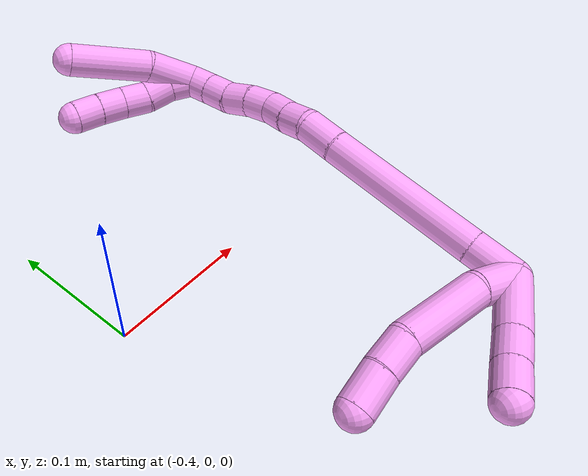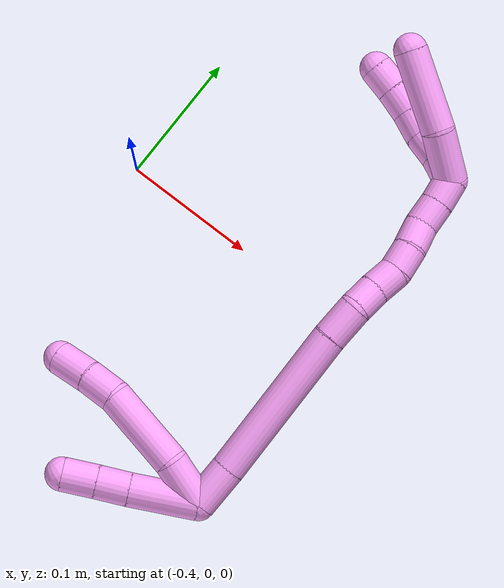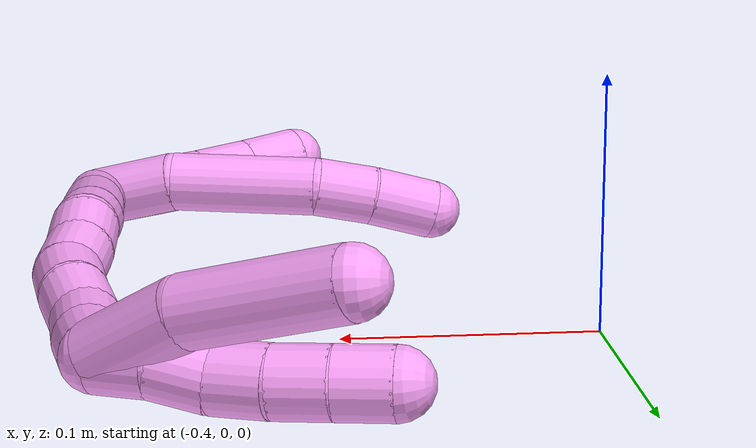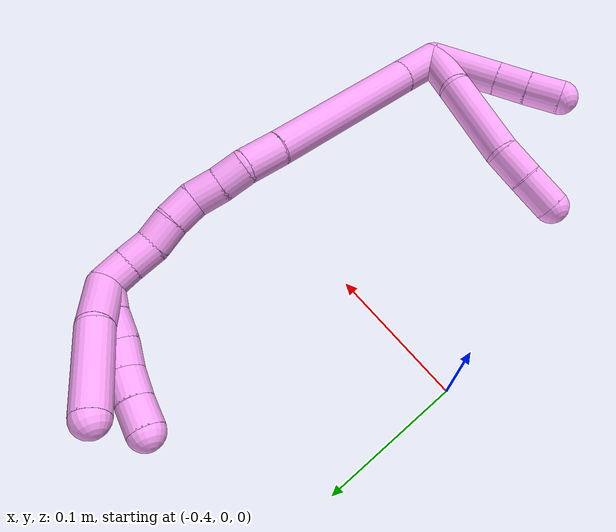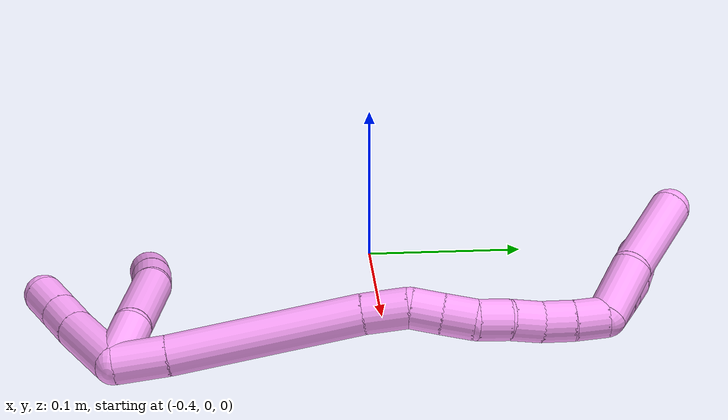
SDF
<sdf version="1.7">
 <world name="default">
  <model name="4">
   <static>0</static>
   <link name="4">
    <collision name="collision-cylinder-e_1_2_8">
     <pose>0.001879 0.001861 0.017879 -0.103736 0.104135 -0.005411</pose>
     <geometry><cylinder><radius>0.0125</radius><length>0.036146</length></cylinder></geometry>
     <surface>
      <friction><ode><mu>1.16</mu><mu2>1.16</mu2><slip1>0</slip1><slip2>0</slip2></ode></friction>
      <contact><ode><kp>1e+06</kp><kd>1</kd><max_vel>0</max_vel><min_depth>0.001</min_depth></ode></contact>
     </surface>
    </collision>
    <visual name="visual-cylinder-e_1_2_8">
     <pose>0.001879 0.001861 0.017879 -0.103736 0.104135 -0.005411</pose>
     <geometry><cylinder><radius>0.0125</radius><length>0.036146</length></cylinder></geometry>
     <material><ambient>1 0.65098 0.996078 1</ambient></material>
    </visual>
    <collision name="collision-cylinder-e_2_8_9">
     <pose>0.002991 -0.001197 0.066302 0.159689 -0.024756 -0.001981</pose>
     <geometry><cylinder><radius>0.0125</radius><length>0.061895</length></cylinder></geometry>
     <surface>
      <friction><ode><mu>1.16</mu><mu2>1.16</mu2><slip1>0</slip1><slip2>0</slip2></ode></friction>
      <contact><ode><kp>1e+06</kp><kd>1</kd><max_vel>0</max_vel><min_depth>0.001</min_depth></ode></contact>
     </surface>
    </collision>
    <visual name="visual-cylinder-e_2_8_9">
     <pose>0.002991 -0.001197 0.066302 0.159689 -0.024756 -0.001981</pose>
     <geometry><cylinder><radius>0.0125</radius><length>0.061895</length></cylinder></geometry>
     <material><ambient>1 0.65098 0.996078 1</ambient></material>
    </visual>
    <collision name="collision-cylinder-e_3_9_10">
     <pose>0.001868 -0.011226 0.108161 0.424142 -0.028738 -0.006188</pose>
     <geometry><cylinder><radius>0.0125</radius><length>0.02484</length></cylinder></geometry>
     <surface>
      <friction><ode><mu>1.16</mu><mu2>1.16</mu2><slip1>0</slip1><slip2>0</slip2></ode></friction>
      <contact><ode><kp>1e+06</kp><kd>1</kd><max_vel>0</max_vel><min_depth>0.001</min_depth></ode></contact>
     </surface>
    </collision>
    <visual name="visual-cylinder-e_3_9_10">
     <pose>0.001868 -0.011226 0.108161 0.424142 -0.028738 -0.006188</pose>
     <geometry><cylinder><radius>0.0125</radius><length>0.02484</length></cylinder></geometry>
     <material><ambient>1 0.65098 0.996078 1</ambient></material>
    </visual>
    <collision name="collision-cylinder-e_4_10_6">
     <pose>0.000699 -0.023052 0.131226 0.519313 -0.059983 -0.015939</pose>
     <geometry><cylinder><radius>0.0125</radius><length>0.027118</length></cylinder></geometry>
     <surface>
      <friction><ode><mu>1.16</mu><mu2>1.16</mu2><slip1>0</slip1><slip2>0</slip2></ode></friction>
      <contact><ode><kp>1e+06</kp><kd>1</kd><max_vel>0</max_vel><min_depth>0.001</min_depth></ode></contact>
     </surface>
    </collision>
    <visual name="visual-cylinder-e_4_10_6">
     <pose>0.000699 -0.023052 0.131226 0.519313 -0.059983 -0.015939</pose>
     <geometry><cylinder><radius>0.0125</radius><length>0.027118</length></cylinder></geometry>
     <material><ambient>1 0.65098 0.996078 1</ambient></material>
    </visual>
    <collision name="collision-cylinder-e_1_2_11">
     <pose>0.010575 -0.014132 0.01817 0.661027 0.430672 0.149809</pose>
     <geometry><cylinder><radius>0.0125</radius><length>0.050663</length></cylinder></geometry>
     <surface>
      <friction><ode><mu>1.16</mu><mu2>1.16</mu2><slip1>0</slip1><slip2>0</slip2></ode></friction>
      <contact><ode><kp>1e+06</kp><kd>1</kd><max_vel>0</max_vel><min_depth>0.001</min_depth></ode></contact>
     </surface>
    </collision>
    <visual name="visual-cylinder-e_1_2_11">
     <pose>0.010575 -0.014132 0.01817 0.661027 0.430672 0.149809</pose>
     <geometry><cylinder><radius>0.0125</radius><length>0.050663</length></cylinder></geometry>
     <material><ambient>1 0.65098 0.996078 1</ambient></material>
    </visual>
    <collision name="collision-cylinder-e_2_11_12">
     <pose>0.026302 -0.03445 0.045296 0.604474 0.442013 0.139875</pose>
     <geometry><cylinder><radius>0.0125</radius><length>0.024086</length></cylinder></geometry>
     <surface>
      <friction><ode><mu>1.16</mu><mu2>1.16</mu2><slip1>0</slip1><slip2>0</slip2></ode></friction>
      <contact><ode><kp>1e+06</kp><kd>1</kd><max_vel>0</max_vel><min_depth>0.001</min_depth></ode></contact>
     </surface>
    </collision>
    <visual name="visual-cylinder-e_2_11_12">
     <pose>0.026302 -0.03445 0.045296 0.604474 0.442013 0.139875</pose>
     <geometry><cylinder><radius>0.0125</radius><length>0.024086</length></cylinder></geometry>
     <material><ambient>1 0.65098 0.996078 1</ambient></material>
    </visual>
    <collision name="collision-cylinder-e_3_12_5">
     <pose>0.037151 -0.047111 0.063474 0.612141 0.468159 0.150417</pose>
     <geometry><cylinder><radius>0.0125</radius><length>0.025251</length></cylinder></geometry>
     <surface>
      <friction><ode><mu>1.16</mu><mu2>1.16</mu2><slip1>0</slip1><slip2>0</slip2></ode></friction>
      <contact><ode><kp>1e+06</kp><kd>1</kd><max_vel>0</max_vel><min_depth>0.001</min_depth></ode></contact>
     </surface>
    </collision>
    <visual name="visual-cylinder-e_3_12_5">
     <pose>0.037151 -0.047111 0.063474 0.612141 0.468159 0.150417</pose>
     <geometry><cylinder><radius>0.0125</radius><length>0.025251</length></cylinder></geometry>
     <material><ambient>1 0.65098 0.996078 1</ambient></material>
    </visual>
    <collision name="collision-cylinder-e_1_2_13">
     <pose>-0.008412 0.013391 0.004447 -1.25016 -0.537585 0.392432</pose>
     <geometry><cylinder><radius>0.0125</radius><length>0.032855</length></cylinder></geometry>
     <surface>
      <friction><ode><mu>1.16</mu><mu2>1.16</mu2><slip1>0</slip1><slip2>0</slip2></ode></friction>
      <contact><ode><kp>1e+06</kp><kd>1</kd><max_vel>0</max_vel><min_depth>0.001</min_depth></ode></contact>
     </surface>
    </collision>
    <visual name="visual-cylinder-e_1_2_13">
     <pose>-0.008412 0.013391 0.004447 -1.25016 -0.537585 0.392432</pose>
     <geometry><cylinder><radius>0.0125</radius><length>0.032855</length></cylinder></geometry>
     <material><ambient>1 0.65098 0.996078 1</ambient></material>
    </visual>
    <collision name="collision-cylinder-e_2_13_14">
     <pose>-0.044704 0.075827 0.027022 -1.21675 -0.489857 0.344723</pose>
     <geometry><cylinder><radius>0.0125</radius><length>0.118513</length></cylinder></geometry>
     <surface>
      <friction><ode><mu>1.16</mu><mu2>1.16</mu2><slip1>0</slip1><slip2>0</slip2></ode></friction>
      <contact><ode><kp>1e+06</kp><kd>1</kd><max_vel>0</max_vel><min_depth>0.001</min_depth></ode></contact>
     </surface>
    </collision>
    <visual name="visual-cylinder-e_2_13_14">
     <pose>-0.044704 0.075827 0.027022 -1.21675 -0.489857 0.344723</pose>
     <geometry><cylinder><radius>0.0125</radius><length>0.118513</length></cylinder></geometry>
     <material><ambient>1 0.65098 0.996078 1</ambient></material>
    </visual>
    <collision name="collision-cylinder-e_3_14_15">
     <pose>-0.079827 0.136158 0.048553 -1.27794 -0.550986 0.414015</pose>
     <geometry><cylinder><radius>0.0125</radius><length>0.027671</length></cylinder></geometry>
     <surface>
      <friction><ode><mu>1.16</mu><mu2>1.16</mu2><slip1>0</slip1><slip2>0</slip2></ode></friction>
      <contact><ode><kp>1e+06</kp><kd>1</kd><max_vel>0</max_vel><min_depth>0.001</min_depth></ode></contact>
     </surface>
    </collision>
    <visual name="visual-cylinder-e_3_14_15">
     <pose>-0.079827 0.136158 0.048553 -1.27794 -0.550986 0.414015</pose>
     <geometry><cylinder><radius>0.0125</radius><length>0.027671</length></cylinder></geometry>
     <material><ambient>1 0.65098 0.996078 1</ambient></material>
    </visual>
    <collision name="collision-cylinder-e_4_15_16">
     <pose>-0.094864 0.153533 0.053661 -1.29785 -0.889189 0.693517</pose>
     <geometry><cylinder><radius>0.0125</radius><length>0.020071</length></cylinder></geometry>
     <surface>
      <friction><ode><mu>1.16</mu><mu2>1.16</mu2><slip1>0</slip1><slip2>0</slip2></ode></friction>
      <contact><ode><kp>1e+06</kp><kd>1</kd><max_vel>0</max_vel><min_depth>0.001</min_depth></ode></contact>
     </surface>
    </collision>
    <visual name="visual-cylinder-e_4_15_16">
     <pose>-0.094864 0.153533 0.053661 -1.29785 -0.889189 0.693517</pose>
     <geometry><cylinder><radius>0.0125</radius><length>0.020071</length></cylinder></geometry>
     <material><ambient>1 0.65098 0.996078 1</ambient></material>
    </visual>
    <collision name="collision-cylinder-e_5_16_17">
     <pose>-0.110353 0.16647 0.056355 -1.42725 -0.838436 0.736501</pose>
     <geometry><cylinder><radius>0.0125</radius><length>0.020697</length></cylinder></geometry>
     <surface>
      <friction><ode><mu>1.16</mu><mu2>1.16</mu2><slip1>0</slip1><slip2>0</slip2></ode></friction>
      <contact><ode><kp>1e+06</kp><kd>1</kd><max_vel>0</max_vel><min_depth>0.001</min_depth></ode></contact>
     </surface>
    </collision>
    <visual name="visual-cylinder-e_5_16_17">
     <pose>-0.110353 0.16647 0.056355 -1.42725 -0.838436 0.736501</pose>
     <geometry><cylinder><radius>0.0125</radius><length>0.020697</length></cylinder></geometry>
     <material><ambient>1 0.65098 0.996078 1</ambient></material>
    </visual>
    <collision name="collision-cylinder-e_6_17_18">
     <pose>-0.124845 0.179633 0.061236 -1.01861 -0.741781 0.427704</pose>
     <geometry><cylinder><radius>0.0125</radius><length>0.020121</length></cylinder></geometry>
     <surface>
      <friction><ode><mu>1.16</mu><mu2>1.16</mu2><slip1>0</slip1><slip2>0</slip2></ode></friction>
      <contact><ode><kp>1e+06</kp><kd>1</kd><max_vel>0</max_vel><min_depth>0.001</min_depth></ode></contact>
     </surface>
    </collision>
    <visual name="visual-cylinder-e_6_17_18">
     <pose>-0.124845 0.179633 0.061236 -1.01861 -0.741781 0.427704</pose>
     <geometry><cylinder><radius>0.0125</radius><length>0.020121</length></cylinder></geometry>
     <material><ambient>1 0.65098 0.996078 1</ambient></material>
    </visual>
    <collision name="collision-cylinder-e_7_18_19">
     <pose>-0.139033 0.190908 0.069705 -0.825352 -0.830684 0.381458</pose>
     <geometry><cylinder><radius>0.0125</radius><length>0.020019</length></cylinder></geometry>
     <surface>
      <friction><ode><mu>1.16</mu><mu2>1.16</mu2><slip1>0</slip1><slip2>0</slip2></ode></friction>
      <contact><ode><kp>1e+06</kp><kd>1</kd><max_vel>0</max_vel><min_depth>0.001</min_depth></ode></contact>
     </surface>
    </collision>
    <visual name="visual-cylinder-e_7_18_19">
     <pose>-0.139033 0.190908 0.069705 -0.825352 -0.830684 0.381458</pose>
     <geometry><cylinder><radius>0.0125</radius><length>0.020019</length></cylinder></geometry>
     <material><ambient>1 0.65098 0.996078 1</ambient></material>
    </visual>
    <collision name="collision-cylinder-e_8_19_20">
     <pose>-0.152827 0.202768 0.077696 -1.11145 -0.693887 0.44175</pose>
     <geometry><cylinder><radius>0.0125</radius><length>0.020026</length></cylinder></geometry>
     <surface>
      <friction><ode><mu>1.16</mu><mu2>1.16</mu2><slip1>0</slip1><slip2>0</slip2></ode></friction>
      <contact><ode><kp>1e+06</kp><kd>1</kd><max_vel>0</max_vel><min_depth>0.001</min_depth></ode></contact>
     </surface>
    </collision>
    <visual name="visual-cylinder-e_8_19_20">
     <pose>-0.152827 0.202768 0.077696 -1.11145 -0.693887 0.44175</pose>
     <geometry><cylinder><radius>0.0125</radius><length>0.020026</length></cylinder></geometry>
     <material><ambient>1 0.65098 0.996078 1</ambient></material>
    </visual>
    <collision name="collision-cylinder-e_9_20_1">
     <pose>-0.165139 0.216632 0.085214 -1.03827 -0.631125 0.368862</pose>
     <geometry><cylinder><radius>0.0125</radius><length>0.020027</length></cylinder></geometry>
     <surface>
      <friction><ode><mu>1.16</mu><mu2>1.16</mu2><slip1>0</slip1><slip2>0</slip2></ode></friction>
      <contact><ode><kp>1e+06</kp><kd>1</kd><max_vel>0</max_vel><min_depth>0.001</min_depth></ode></contact>
     </surface>
    </collision>
    <visual name="visual-cylinder-e_9_20_1">
     <pose>-0.165139 0.216632 0.085214 -1.03827 -0.631125 0.368862</pose>
     <geometry><cylinder><radius>0.0125</radius><length>0.020027</length></cylinder></geometry>
     <material><ambient>1 0.65098 0.996078 1</ambient></material>
    </visual>
    <collision name="collision-cylinder-e_1_1_21">
     <pose>-0.168086 0.232583 0.106413 -0.483941 0.152135 -0.037616</pose>
     <geometry><cylinder><radius>0.0125</radius><length>0.039076</length></cylinder></geometry>
     <surface>
      <friction><ode><mu>1.16</mu><mu2>1.16</mu2><slip1>0</slip1><slip2>0</slip2></ode></friction>
      <contact><ode><kp>1e+06</kp><kd>1</kd><max_vel>0</max_vel><min_depth>0.001</min_depth></ode></contact>
     </surface>
    </collision>
    <visual name="visual-cylinder-e_1_1_21">
     <pose>-0.168086 0.232583 0.106413 -0.483941 0.152135 -0.037616</pose>
     <geometry><cylinder><radius>0.0125</radius><length>0.039076</length></cylinder></geometry>
     <material><ambient>1 0.65098 0.996078 1</ambient></material>
    </visual>
    <collision name="collision-cylinder-e_2_21_4">
     <pose>-0.165647 0.250573 0.152603 -0.300142 -0.017137 0.002591</pose>
     <geometry><cylinder><radius>0.0125</radius><length>0.060924</length></cylinder></geometry>
     <surface>
      <friction><ode><mu>1.16</mu><mu2>1.16</mu2><slip1>0</slip1><slip2>0</slip2></ode></friction>
      <contact><ode><kp>1e+06</kp><kd>1</kd><max_vel>0</max_vel><min_depth>0.001</min_depth></ode></contact>
     </surface>
    </collision>
    <visual name="visual-cylinder-e_2_21_4">
     <pose>-0.165647 0.250573 0.152603 -0.300142 -0.017137 0.002591</pose>
     <geometry><cylinder><radius>0.0125</radius><length>0.060924</length></cylinder></geometry>
     <material><ambient>1 0.65098 0.996078 1</ambient></material>
    </visual>
    <collision name="collision-cylinder-e_1_1_22">
     <pose>-0.17261 0.224047 0.099185 -0.045513 -0.156956 0.00358</pose>
     <geometry><cylinder><radius>0.0125</radius><length>0.02</length></cylinder></geometry>
     <surface>
      <friction><ode><mu>1.16</mu><mu2>1.16</mu2><slip1>0</slip1><slip2>0</slip2></ode></friction>
      <contact><ode><kp>1e+06</kp><kd>1</kd><max_vel>0</max_vel><min_depth>0.001</min_depth></ode></contact>
     </surface>
    </collision>
    <visual name="visual-cylinder-e_1_1_22">
     <pose>-0.17261 0.224047 0.099185 -0.045513 -0.156956 0.00358</pose>
     <geometry><cylinder><radius>0.0125</radius><length>0.02</length></cylinder></geometry>
     <material><ambient>1 0.65098 0.996078 1</ambient></material>
    </visual>
    <collision name="collision-cylinder-e_2_22_23">
     <pose>-0.17652 0.222698 0.118605 0.186027 -0.236861 -0.022198</pose>
     <geometry><cylinder><radius>0.0125</radius><length>0.02</length></cylinder></geometry>
     <surface>
      <friction><ode><mu>1.16</mu><mu2>1.16</mu2><slip1>0</slip1><slip2>0</slip2></ode></friction>
      <contact><ode><kp>1e+06</kp><kd>1</kd><max_vel>0</max_vel><min_depth>0.001</min_depth></ode></contact>
     </surface>
    </collision>
    <visual name="visual-cylinder-e_2_22_23">
     <pose>-0.17652 0.222698 0.118605 0.186027 -0.236861 -0.022198</pose>
     <geometry><cylinder><radius>0.0125</radius><length>0.02</length></cylinder></geometry>
     <material><ambient>1 0.65098 0.996078 1</ambient></material>
    </visual>
    <collision name="collision-cylinder-e_3_23_24">
     <pose>-0.180247 0.221299 0.138054 -0.040289 -0.138449 0.002794</pose>
     <geometry><cylinder><radius>0.0125</radius><length>0.02</length></cylinder></geometry>
     <surface>
      <friction><ode><mu>1.16</mu><mu2>1.16</mu2><slip1>0</slip1><slip2>0</slip2></ode></friction>
      <contact><ode><kp>1e+06</kp><kd>1</kd><max_vel>0</max_vel><min_depth>0.001</min_depth></ode></contact>
     </surface>
    </collision>
    <visual name="visual-cylinder-e_3_23_24">
     <pose>-0.180247 0.221299 0.138054 -0.040289 -0.138449 0.002794</pose>
     <geometry><cylinder><radius>0.0125</radius><length>0.02</length></cylinder></geometry>
     <material><ambient>1 0.65098 0.996078 1</ambient></material>
    </visual>
    <collision name="collision-cylinder-e_4_24_25">
     <pose>-0.182084 0.221429 0.157937 0.026904 -0.045702 -0.000615</pose>
     <geometry><cylinder><radius>0.0125</radius><length>0.02</length></cylinder></geometry>
     <surface>
      <friction><ode><mu>1.16</mu><mu2>1.16</mu2><slip1>0</slip1><slip2>0</slip2></ode></friction>
      <contact><ode><kp>1e+06</kp><kd>1</kd><max_vel>0</max_vel><min_depth>0.001</min_depth></ode></contact>
     </surface>
    </collision>
    <visual name="visual-cylinder-e_4_24_25">
     <pose>-0.182084 0.221429 0.157937 0.026904 -0.045702 -0.000615</pose>
     <geometry><cylinder><radius>0.0125</radius><length>0.02</length></cylinder></geometry>
     <material><ambient>1 0.65098 0.996078 1</ambient></material>
    </visual>
    <collision name="collision-cylinder-e_5_25_3">
     <pose>-0.18275 0.220249 0.177879 0.09132 -0.020941 -0.000957</pose>
     <geometry><cylinder><radius>0.0125</radius><length>0.02</length></cylinder></geometry>
     <surface>
      <friction><ode><mu>1.16</mu><mu2>1.16</mu2><slip1>0</slip1><slip2>0</slip2></ode></friction>
      <contact><ode><kp>1e+06</kp><kd>1</kd><max_vel>0</max_vel><min_depth>0.001</min_depth></ode></contact>
     </surface>
    </collision>
    <visual name="visual-cylinder-e_5_25_3">
     <pose>-0.18275 0.220249 0.177879 0.09132 -0.020941 -0.000957</pose>
     <geometry><cylinder><radius>0.0125</radius><length>0.02</length></cylinder></geometry>
     <material><ambient>1 0.65098 0.996078 1</ambient></material>
    </visual>
    <collision name="collision-sphere-3">
     <pose>-0.182959 0.219337 0.187835 0 -0 0</pose>
     <geometry><sphere><radius>0.0125</radius></sphere></geometry>
     <surface>
      <friction><ode><mu>1.16</mu><mu2>1.16</mu2><slip1>0</slip1><slip2>0</slip2></ode></friction>
      <contact><ode><kp>1e+06</kp><kd>1</kd><max_vel>0</max_vel><min_depth>0.001</min_depth></ode></contact>
     </surface>
    </collision>
    <visual name="visual-sphere-3">
     <pose>-0.182959 0.219337 0.187835 0 -0 0</pose>
     <geometry><sphere><radius>0.0125</radius></sphere></geometry>
     <material><ambient>1 0.65098 0.996078 1</ambient></material>
    </visual>
    <collision name="collision-sphere-25">
     <pose>-0.18254 0.221161 0.167922 0 -0 0</pose>
     <geometry><sphere><radius>0.0125</radius></sphere></geometry>
     <surface>
      <friction><ode><mu>1.16</mu><mu2>1.16</mu2><slip1>0</slip1><slip2>0</slip2></ode></friction>
      <contact><ode><kp>1e+06</kp><kd>1</kd><max_vel>0</max_vel><min_depth>0.001</min_depth></ode></contact>
     </surface>
    </collision>
    <visual name="visual-sphere-25">
     <pose>-0.18254 0.221161 0.167922 0 -0 0</pose>
     <geometry><sphere><radius>0.0125</radius></sphere></geometry>
     <material><ambient>1 0.65098 0.996078 1</ambient></material>
    </visual>
    <collision name="collision-sphere-24">
     <pose>-0.181627 0.221698 0.147951 0 -0 0</pose>
     <geometry><sphere><radius>0.0125</radius></sphere></geometry>
     <surface>
      <friction><ode><mu>1.16</mu><mu2>1.16</mu2><slip1>0</slip1><slip2>0</slip2></ode></friction>
      <contact><ode><kp>1e+06</kp><kd>1</kd><max_vel>0</max_vel><min_depth>0.001</min_depth></ode></contact>
     </surface>
    </collision>
    <visual name="visual-sphere-24">
     <pose>-0.181627 0.221698 0.147951 0 -0 0</pose>
     <geometry><sphere><radius>0.0125</radius></sphere></geometry>
     <material><ambient>1 0.65098 0.996078 1</ambient></material>
    </visual>
    <collision name="collision-sphere-23">
     <pose>-0.178867 0.2209 0.128158 0 -0 0</pose>
     <geometry><sphere><radius>0.0125</radius></sphere></geometry>
     <surface>
      <friction><ode><mu>1.16</mu><mu2>1.16</mu2><slip1>0</slip1><slip2>0</slip2></ode></friction>
      <contact><ode><kp>1e+06</kp><kd>1</kd><max_vel>0</max_vel><min_depth>0.001</min_depth></ode></contact>
     </surface>
    </collision>
    <visual name="visual-sphere-23">
     <pose>-0.178867 0.2209 0.128158 0 -0 0</pose>
     <geometry><sphere><radius>0.0125</radius></sphere></geometry>
     <material><ambient>1 0.65098 0.996078 1</ambient></material>
    </visual>
    <collision name="collision-sphere-22">
     <pose>-0.174174 0.224496 0.109052 0 -0 0</pose>
     <geometry><sphere><radius>0.0125</radius></sphere></geometry>
     <surface>
      <friction><ode><mu>1.16</mu><mu2>1.16</mu2><slip1>0</slip1><slip2>0</slip2></ode></friction>
      <contact><ode><kp>1e+06</kp><kd>1</kd><max_vel>0</max_vel><min_depth>0.001</min_depth></ode></contact>
     </surface>
    </collision>
    <visual name="visual-sphere-22">
     <pose>-0.174174 0.224496 0.109052 0 -0 0</pose>
     <geometry><sphere><radius>0.0125</radius></sphere></geometry>
     <material><ambient>1 0.65098 0.996078 1</ambient></material>
    </visual>
    <collision name="collision-sphere-4">
     <pose>-0.166169 0.259578 0.181699 0 -0 0</pose>
     <geometry><sphere><radius>0.0125</radius></sphere></geometry>
     <surface>
      <friction><ode><mu>1.16</mu><mu2>1.16</mu2><slip1>0</slip1><slip2>0</slip2></ode></friction>
      <contact><ode><kp>1e+06</kp><kd>1</kd><max_vel>0</max_vel><min_depth>0.001</min_depth></ode></contact>
     </surface>
    </collision>
    <visual name="visual-sphere-4">
     <pose>-0.166169 0.259578 0.181699 0 -0 0</pose>
     <geometry><sphere><radius>0.0125</radius></sphere></geometry>
     <material><ambient>1 0.65098 0.996078 1</ambient></material>
    </visual>
    <collision name="collision-sphere-21">
     <pose>-0.165125 0.241568 0.123507 0 -0 0</pose>
     <geometry><sphere><radius>0.0125</radius></sphere></geometry>
     <surface>
      <friction><ode><mu>1.16</mu><mu2>1.16</mu2><slip1>0</slip1><slip2>0</slip2></ode></friction>
      <contact><ode><kp>1e+06</kp><kd>1</kd><max_vel>0</max_vel><min_depth>0.001</min_depth></ode></contact>
     </surface>
    </collision>
    <visual name="visual-sphere-21">
     <pose>-0.165125 0.241568 0.123507 0 -0 0</pose>
     <geometry><sphere><radius>0.0125</radius></sphere></geometry>
     <material><ambient>1 0.65098 0.996078 1</ambient></material>
    </visual>
    <collision name="collision-sphere-1">
     <pose>-0.171047 0.223597 0.089318 0 -0 0</pose>
     <geometry><sphere><radius>0.0125</radius></sphere></geometry>
     <surface>
      <friction><ode><mu>1.16</mu><mu2>1.16</mu2><slip1>0</slip1><slip2>0</slip2></ode></friction>
      <contact><ode><kp>1e+06</kp><kd>1</kd><max_vel>0</max_vel><min_depth>0.001</min_depth></ode></contact>
     </surface>
    </collision>
    <visual name="visual-sphere-1">
     <pose>-0.171047 0.223597 0.089318 0 -0 0</pose>
     <geometry><sphere><radius>0.0125</radius></sphere></geometry>
     <material><ambient>1 0.65098 0.996078 1</ambient></material>
    </visual>
    <collision name="collision-sphere-11">
     <pose>0.021151 -0.028263 0.036339 0 -0 0</pose>
     <geometry><sphere><radius>0.0125</radius></sphere></geometry>
     <surface>
      <friction><ode><mu>1.16</mu><mu2>1.16</mu2><slip1>0</slip1><slip2>0</slip2></ode></friction>
      <contact><ode><kp>1e+06</kp><kd>1</kd><max_vel>0</max_vel><min_depth>0.001</min_depth></ode></contact>
     </surface>
    </collision>
    <visual name="visual-sphere-11">
     <pose>0.021151 -0.028263 0.036339 0 -0 0</pose>
     <geometry><sphere><radius>0.0125</radius></sphere></geometry>
     <material><ambient>1 0.65098 0.996078 1</ambient></material>
    </visual>
    <collision name="collision-sphere-6">
     <pose>-0.000114 -0.029769 0.142977 0 -0 0</pose>
     <geometry><sphere><radius>0.0125</radius></sphere></geometry>
     <surface>
      <friction><ode><mu>1.16</mu><mu2>1.16</mu2><slip1>0</slip1><slip2>0</slip2></ode></friction>
      <contact><ode><kp>1e+06</kp><kd>1</kd><max_vel>0</max_vel><min_depth>0.001</min_depth></ode></contact>
     </surface>
    </collision>
    <visual name="visual-sphere-6">
     <pose>-0.000114 -0.029769 0.142977 0 -0 0</pose>
     <geometry><sphere><radius>0.0125</radius></sphere></geometry>
     <material><ambient>1 0.65098 0.996078 1</ambient></material>
    </visual>
    <collision name="collision-sphere-10">
     <pose>0.001511 -0.016335 0.119476 0 -0 0</pose>
     <geometry><sphere><radius>0.0125</radius></sphere></geometry>
     <surface>
      <friction><ode><mu>1.16</mu><mu2>1.16</mu2><slip1>0</slip1><slip2>0</slip2></ode></friction>
      <contact><ode><kp>1e+06</kp><kd>1</kd><max_vel>0</max_vel><min_depth>0.001</min_depth></ode></contact>
     </surface>
    </collision>
    <visual name="visual-sphere-10">
     <pose>0.001511 -0.016335 0.119476 0 -0 0</pose>
     <geometry><sphere><radius>0.0125</radius></sphere></geometry>
     <material><ambient>1 0.65098 0.996078 1</ambient></material>
    </visual>
    <collision name="collision-sphere-9">
     <pose>0.002225 -0.006116 0.096846 0 -0 0</pose>
     <geometry><sphere><radius>0.0125</radius></sphere></geometry>
     <surface>
      <friction><ode><mu>1.16</mu><mu2>1.16</mu2><slip1>0</slip1><slip2>0</slip2></ode></friction>
      <contact><ode><kp>1e+06</kp><kd>1</kd><max_vel>0</max_vel><min_depth>0.001</min_depth></ode></contact>
     </surface>
    </collision>
    <visual name="visual-sphere-9">
     <pose>0.002225 -0.006116 0.096846 0 -0 0</pose>
     <geometry><sphere><radius>0.0125</radius></sphere></geometry>
     <material><ambient>1 0.65098 0.996078 1</ambient></material>
    </visual>
    <collision name="collision-sphere-2">
     <geometry><sphere><radius>0.0125</radius></sphere></geometry>
     <surface>
      <friction><ode><mu>1.16</mu><mu2>1.16</mu2><slip1>0</slip1><slip2>0</slip2></ode></friction>
      <contact><ode><kp>1e+06</kp><kd>1</kd><max_vel>0</max_vel><min_depth>0.001</min_depth></ode></contact>
     </surface>
    </collision>
    <visual name="visual-sphere-2">
     <geometry><sphere><radius>0.0125</radius></sphere></geometry>
     <material><ambient>1 0.65098 0.996078 1</ambient></material>
    </visual>
    <collision name="collision-sphere-19">
     <pose>-0.146424 0.195868 0.074284 0 -0 0</pose>
     <geometry><sphere><radius>0.0125</radius></sphere></geometry>
     <surface>
      <friction><ode><mu>1.16</mu><mu2>1.16</mu2><slip1>0</slip1><slip2>0</slip2></ode></friction>
      <contact><ode><kp>1e+06</kp><kd>1</kd><max_vel>0</max_vel><min_depth>0.001</min_depth></ode></contact>
     </surface>
    </collision>
    <visual name="visual-sphere-19">
     <pose>-0.146424 0.195868 0.074284 0 -0 0</pose>
     <geometry><sphere><radius>0.0125</radius></sphere></geometry>
     <material><ambient>1 0.65098 0.996078 1</ambient></material>
    </visual>
    <collision name="collision-sphere-8">
     <pose>0.003757 0.003723 0.035757 0 -0 0</pose>
     <geometry><sphere><radius>0.0125</radius></sphere></geometry>
     <surface>
      <friction><ode><mu>1.16</mu><mu2>1.16</mu2><slip1>0</slip1><slip2>0</slip2></ode></friction>
      <contact><ode><kp>1e+06</kp><kd>1</kd><max_vel>0</max_vel><min_depth>0.001</min_depth></ode></contact>
     </surface>
    </collision>
    <visual name="visual-sphere-8">
     <pose>0.003757 0.003723 0.035757 0 -0 0</pose>
     <geometry><sphere><radius>0.0125</radius></sphere></geometry>
     <material><ambient>1 0.65098 0.996078 1</ambient></material>
    </visual>
    <collision name="collision-sphere-12">
     <pose>0.031454 -0.040637 0.054253 0 -0 0</pose>
     <geometry><sphere><radius>0.0125</radius></sphere></geometry>
     <surface>
      <friction><ode><mu>1.16</mu><mu2>1.16</mu2><slip1>0</slip1><slip2>0</slip2></ode></friction>
      <contact><ode><kp>1e+06</kp><kd>1</kd><max_vel>0</max_vel><min_depth>0.001</min_depth></ode></contact>
     </surface>
    </collision>
    <visual name="visual-sphere-12">
     <pose>0.031454 -0.040637 0.054253 0 -0 0</pose>
     <geometry><sphere><radius>0.0125</radius></sphere></geometry>
     <material><ambient>1 0.65098 0.996078 1</ambient></material>
    </visual>
    <collision name="collision-sphere-5">
     <pose>0.042848 -0.053585 0.072695 0 -0 0</pose>
     <geometry><sphere><radius>0.0125</radius></sphere></geometry>
     <surface>
      <friction><ode><mu>1.16</mu><mu2>1.16</mu2><slip1>0</slip1><slip2>0</slip2></ode></friction>
      <contact><ode><kp>1e+06</kp><kd>1</kd><max_vel>0</max_vel><min_depth>0.001</min_depth></ode></contact>
     </surface>
    </collision>
    <visual name="visual-sphere-5">
     <pose>0.042848 -0.053585 0.072695 0 -0 0</pose>
     <geometry><sphere><radius>0.0125</radius></sphere></geometry>
     <material><ambient>1 0.65098 0.996078 1</ambient></material>
    </visual>
    <collision name="collision-sphere-13">
     <pose>-0.016824 0.026782 0.008894 0 -0 0</pose>
     <geometry><sphere><radius>0.0125</radius></sphere></geometry>
     <surface>
      <friction><ode><mu>1.16</mu><mu2>1.16</mu2><slip1>0</slip1><slip2>0</slip2></ode></friction>
      <contact><ode><kp>1e+06</kp><kd>1</kd><max_vel>0</max_vel><min_depth>0.001</min_depth></ode></contact>
     </surface>
    </collision>
    <visual name="visual-sphere-13">
     <pose>-0.016824 0.026782 0.008894 0 -0 0</pose>
     <geometry><sphere><radius>0.0125</radius></sphere></geometry>
     <material><ambient>1 0.65098 0.996078 1</ambient></material>
    </visual>
    <collision name="collision-sphere-14">
     <pose>-0.072584 0.124872 0.04515 0 -0 0</pose>
     <geometry><sphere><radius>0.0125</radius></sphere></geometry>
     <surface>
      <friction><ode><mu>1.16</mu><mu2>1.16</mu2><slip1>0</slip1><slip2>0</slip2></ode></friction>
      <contact><ode><kp>1e+06</kp><kd>1</kd><max_vel>0</max_vel><min_depth>0.001</min_depth></ode></contact>
     </surface>
    </collision>
    <visual name="visual-sphere-14">
     <pose>-0.072584 0.124872 0.04515 0 -0 0</pose>
     <geometry><sphere><radius>0.0125</radius></sphere></geometry>
     <material><ambient>1 0.65098 0.996078 1</ambient></material>
    </visual>
    <collision name="collision-sphere-15">
     <pose>-0.087071 0.147444 0.051956 0 -0 0</pose>
     <geometry><sphere><radius>0.0125</radius></sphere></geometry>
     <surface>
      <friction><ode><mu>1.16</mu><mu2>1.16</mu2><slip1>0</slip1><slip2>0</slip2></ode></friction>
      <contact><ode><kp>1e+06</kp><kd>1</kd><max_vel>0</max_vel><min_depth>0.001</min_depth></ode></contact>
     </surface>
    </collision>
    <visual name="visual-sphere-15">
     <pose>-0.087071 0.147444 0.051956 0 -0 0</pose>
     <geometry><sphere><radius>0.0125</radius></sphere></geometry>
     <material><ambient>1 0.65098 0.996078 1</ambient></material>
    </visual>
    <collision name="collision-sphere-16">
     <pose>-0.102657 0.159622 0.055365 0 -0 0</pose>
     <geometry><sphere><radius>0.0125</radius></sphere></geometry>
     <surface>
      <friction><ode><mu>1.16</mu><mu2>1.16</mu2><slip1>0</slip1><slip2>0</slip2></ode></friction>
      <contact><ode><kp>1e+06</kp><kd>1</kd><max_vel>0</max_vel><min_depth>0.001</min_depth></ode></contact>
     </surface>
    </collision>
    <visual name="visual-sphere-16">
     <pose>-0.102657 0.159622 0.055365 0 -0 0</pose>
     <geometry><sphere><radius>0.0125</radius></sphere></geometry>
     <material><ambient>1 0.65098 0.996078 1</ambient></material>
    </visual>
    <collision name="collision-sphere-17">
     <pose>-0.118048 0.173318 0.057345 0 -0 0</pose>
     <geometry><sphere><radius>0.0125</radius></sphere></geometry>
     <surface>
      <friction><ode><mu>1.16</mu><mu2>1.16</mu2><slip1>0</slip1><slip2>0</slip2></ode></friction>
      <contact><ode><kp>1e+06</kp><kd>1</kd><max_vel>0</max_vel><min_depth>0.001</min_depth></ode></contact>
     </surface>
    </collision>
    <visual name="visual-sphere-17">
     <pose>-0.118048 0.173318 0.057345 0 -0 0</pose>
     <geometry><sphere><radius>0.0125</radius></sphere></geometry>
     <material><ambient>1 0.65098 0.996078 1</ambient></material>
    </visual>
    <collision name="collision-sphere-18">
     <pose>-0.131642 0.185948 0.065126 0 -0 0</pose>
     <geometry><sphere><radius>0.0125</radius></sphere></geometry>
     <surface>
      <friction><ode><mu>1.16</mu><mu2>1.16</mu2><slip1>0</slip1><slip2>0</slip2></ode></friction>
      <contact><ode><kp>1e+06</kp><kd>1</kd><max_vel>0</max_vel><min_depth>0.001</min_depth></ode></contact>
     </surface>
    </collision>
    <visual name="visual-sphere-18">
     <pose>-0.131642 0.185948 0.065126 0 -0 0</pose>
     <geometry><sphere><radius>0.0125</radius></sphere></geometry>
     <material><ambient>1 0.65098 0.996078 1</ambient></material>
    </visual>
    <collision name="collision-sphere-20">
     <pose>-0.159231 0.209667 0.081109 0 -0 0</pose>
     <geometry><sphere><radius>0.0125</radius></sphere></geometry>
     <surface>
      <friction><ode><mu>1.16</mu><mu2>1.16</mu2><slip1>0</slip1><slip2>0</slip2></ode></friction>
      <contact><ode><kp>1e+06</kp><kd>1</kd><max_vel>0</max_vel><min_depth>0.001</min_depth></ode></contact>
     </surface>
    </collision>
    <visual name="visual-sphere-20">
     <pose>-0.159231 0.209667 0.081109 0 -0 0</pose>
     <geometry><sphere><radius>0.0125</radius></sphere></geometry>
     <material><ambient>1 0.65098 0.996078 1</ambient></material>
    </visual>
    <inertial>
     <pose>-0.074337 0.104612 0.072965 0 -0 0</pose>
     <mass>0.75</mass>
     <inertia>
      <ixx>0.000252</ixx>
      <ixy>0</ixy>
      <ixz>0</ixz>
      <iyy>0.00022</iyy>
      <iyz>0</iyz>
      <izz>-1.5e-05</izz>
     </inertia>
    </inertial>
   </link>
   <pose>-0.210792 -0.167561 0.015264 1.39925 -0.867534 -1.74883</pose>
  </model>
 </world>
</sdf>
